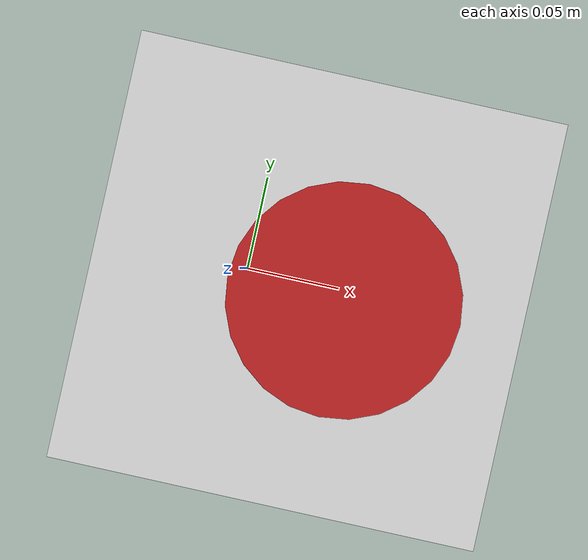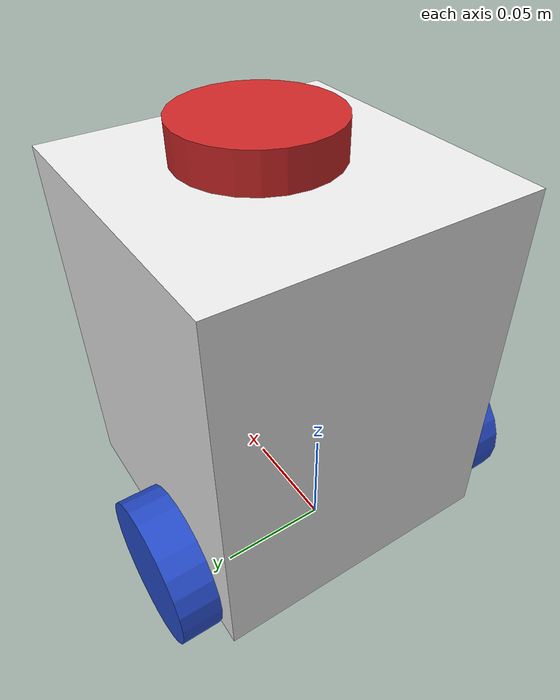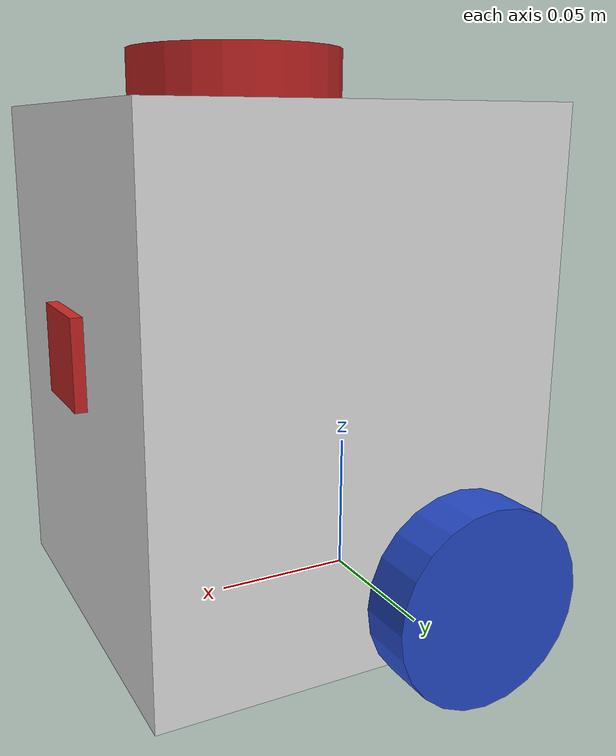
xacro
<?xml version="1.0"?>
<robot xmlns:xacro="http://www.ros.org/wiki/xacro"  name="my_robot_3">

    <xacro:arg name="use_ros2_control" default="true"/>
    <xacro:arg name="sim_mode" default="false"/>

    <xacro:include filename="inertia_macros.xacro"/>
    <xacro:include filename="robot_core.xacro"/>
    <xacro:include filename="colours.xacro"/>
    <xacro:if value="$(arg use_ros2_control)">
        <xacro:include filename="ros2_control.xacro" />
    </xacro:if>
    <xacro:unless value="$(arg use_ros2_control)">
        <xacro:include filename="gazebo_control.xacro" />
    </xacro:unless>

    <xacro:include filename="lidar.xacro" />
    <xacro:include filename="camera.xacro" />
    <xacro:include filename="imu.xacro" />

</robot>

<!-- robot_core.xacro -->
<robot xmlns:xacro="http://www.ros.org/wiki/xacro">

    <!-- Base Link -->
    <link name="base_link">
    </link>

    <!-- Chassis Link -->
    <joint name="chassis_joint" type="fixed">
        <parent link="base_link"/>
        <child link="chassis"/>
        <origin xyz="-0.0365 0 0"/>
    </joint>

    <!-- Chassis 137.6mm² -->
    <link name="chassis">
        <visual>
            <origin xyz="0.069 0 0.0865" rpy="0 0 0"/>
            <geometry>
                <box size="0.138 0.138 0.173"/>
            </geometry>
            <material name="white"/>
        </visual>
        <collision>
            <origin xyz="0.069 0 0.0865" rpy="0 0 0"/>
            <geometry>
                <box size="0.138 0.138 0.173"/>
            </geometry>
            <material name="white"/>
        </collision>
        <xacro:inertial_box mass="1.6" x="0.138" y="0.138" z="0.173">
            <origin xyz="0.069 0 0.0865" rpy="0 0 0"/>
        </xacro:inertial_box>
    </link>
    <gazebo reference="chassis">
        <material>Gazebo/Orange</material>
    </gazebo>

    <!-- LEFT WHEEL 66mm diameter, 18mm wide-->
    <joint name="left_wheel_joint" type="continuous">
        <parent link="base_link"/>
        <child link="left_wheel"/>
        <origin xyz="0 0.08 0.023" rpy="-${pi/2} 0 0"/>
        <axis xyz="0 0 1"/>
    </joint>

    <link name="left_wheel">
        <visual>
            <geometry>
                <cylinder length="0.018" radius="0.033" />
            </geometry>
            <material name="blue"/>
        </visual>
        <collision>
            <geometry>
                <cylinder length="0.018" radius="0.033" />
            </geometry>
            <material name="blue"/>
        </collision>
        <xacro:inertial_cylinder mass="0.1" length="0.018" radius="0.033">
            <origin xyz="0 0 0" rpy="0 0 0"/>
        </xacro:inertial_cylinder>
    </link>
    <gazebo reference="left_wheel">
        <material>Gazebo/Blue</material>
    </gazebo>

    <!-- RIGHT WHEEL -->
    <joint name="right_wheel_joint" type="continuous">
        <parent link="base_link"/>
        <child link="right_wheel"/>
        <origin xyz="0 -0.08 0.023" rpy="${pi/2} 0 0"/>
        <axis xyz="0 0 -1"/>
    </joint>

    <link name="right_wheel">
        <visual>
            <geometry>
                <cylinder length="0.018" radius="0.033" />
            </geometry>
            <material name="blue"/>
        </visual>
        <collision>
            <geometry>
                <cylinder length="0.018" radius="0.033" />
            </geometry>
            <material name="blue"/>
        </collision>
        <xacro:inertial_cylinder mass="0.1" length="0.018" radius="0.033">
            <origin xyz="0 0 0" rpy="0 0 0"/>
        </xacro:inertial_cylinder>
    </link>
    <gazebo reference="right_wheel">
        <material>Gazebo/Blue</material>
    </gazebo>

    <!-- CASTER WHEEL 10mm diameter-->
    <joint name="caster_wheel_joint" type="fixed">
        <parent link="chassis"/>
        <child link="caster_wheel"/>
        <origin xyz="0.12 0 -0.005" rpy="0 0 0"/>
    </joint>

    <link name="caster_wheel">
        <visual>
            <geometry>
                <sphere radius="0.005" />
            </geometry>
            <material name="black"/>
        </visual>
        <collision>
            <geometry>
                <sphere radius="0.005" />
            </geometry>
            <material name="black"/>
        </collision>
    </link>
    <gazebo reference="caster_wheel">
        <material>Gazebo/Black</material>
        <mu1 value="0.001"/>
        <mu2 value="0.001"/>
    </gazebo>

</robot>

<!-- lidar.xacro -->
<robot xmlns:xacro="http://www.ros.org/wiki/xacro" >

    <joint name="laser_joint" type="fixed">
        <parent link="chassis"/>
        <child link="laser_frame"/>
        <origin xyz="0.08 0 0.18" rpy="0 0 0"/>
    </joint>

    <link name="laser_frame">
        <visual>
            <geometry>
                <cylinder radius="0.035" length="0.02"/>
            </geometry>
            <material name="red"/>
        </visual>
        <visual>
            <origin xyz="0 0 -0.05"/>
            <geometry>
                <cylinder radius="0.01" length="0.1"/>
            </geometry>
            <material name="red"/>
        </visual>
        <collision>
            <geometry>
                <cylinder radius="0.035" length="0.02"/>
            </geometry>
        </collision>
        <xacro:inertial_cylinder mass="0.1" length="0.01" radius="0.05">
            <origin xyz="0 0 0" rpy="0 0 0"/>
        </xacro:inertial_cylinder>
    </link>

    <gazebo reference="laser_frame">
        <material>Gazebo/Red</material>

        <sensor name="laser" type="ray">
            <pose> 0 0 0 0 0 0 </pose>
            <visualize>false</visualize>
            <update_rate>10</update_rate>
            <ray>
                <scan>
                    <horizontal>
                        <samples>360</samples>
                        <min_angle>-3.14</min_angle>
                        <max_angle>3.14</max_angle>
                    </horizontal>
                </scan>
                <range>
                    <min>0.3</min>
                    <max>12</max>
                </range>
            </ray>
            <plugin name="laser_controller" filename="libgazebo_ros_ray_sensor.so">
                <ros>
                    <argument>~/out:=scan</argument>
                </ros>
                <output_type>sensor_msgs/LaserScan</output_type>
                <frame_name>laser_frame</frame_name>
            </plugin>
        </sensor>
    </gazebo>

</robot>

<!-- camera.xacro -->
<robot xmlns:xacro="http://www.ros.org/wiki/xacro" >

<joint name="camera_joint" type="fixed">
    <parent link="chassis"/>
    <child link="camera_link"/>
    <origin xyz="0.137 0 0.095" rpy="0 0 0"/>
</joint>

<link name="camera_link">
    <visual>
        <geometry>
            <box size="0.010 0.03 0.03"/>
        </geometry>
        <material name="red"/>
    </visual>
</link>

<joint name="camera_optical_joint" type="fixed">
    <origin xyz="0 0 0" rpy="${-pi/2} 0 ${-pi/2}" />
    <parent link="camera_link" />
    <child link="camera_link_optical" />
</joint>

<link name="camera_link_optical"></link>

<gazebo reference="camera_link">
    <material>Gazebo/Red</material>

    <sensor name="camera" type="camera">
        <pose> 0 0 0 0 0 0 </pose>
        <visualize>true</visualize>
        <update_rate>10</update_rate>
        <camera>
            <horizontal_fov>1.089</horizontal_fov>
            <image>
                <format>R8G8B8</format>
                <width>640</width>
                <height>480</height>
            </image>
            <clip>
                <near>0.05</near>
                <far>8.0</far>
            </clip>
        </camera>
        <plugin name="camera_controller" filename="libgazebo_ros_camera.so">
            <frame_name>camera_link_optical</frame_name>
        </plugin>
    </sensor>
</gazebo>

</robot>

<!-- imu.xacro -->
<robot xmlns:xacro="http://www.ros.org/wiki/xacro" >

<joint name="imu_joint" type="fixed">
    <parent link="base_link"/>
    <child link="imu_link"/>
    <origin xyz="-0.001 0 0.098"/>
</joint>

<link name="imu_link">
    <visual>
        <geometry>
        <box size="0.03 0.02 0.005"/>
        </geometry>
    </visual>

    <collision>
        <geometry>
        <box size="0.03 0.02 0.005"/>
        </geometry>
    </collision>

</link>

<gazebo reference="imu_link">
<sensor name="imu_sensor" type="imu">
<plugin filename="libgazebo_ros_imu_sensor.so" name="imu_plugin">
    <ros>
        <namespace>/demo</namespace>
        <remapping>~/out:=imu</remapping>
    </ros>
    <initial_orientation_as_reference>false</initial_orientation_as_reference>
    </plugin>
    <always_on>true</always_on>
    <update_rate>100</update_rate>
    <visualize>true</visualize>
    <imu>
    <angular_velocity>
        <x>
        <noise type="gaussian">
            <mean>0.0</mean>
            <stddev>2e-4</stddev>
            <bias_mean>0.0000075</bias_mean>
            <bias_stddev>0.0000008</bias_stddev>
        </noise>
        </x>
        <y>
        <noise type="gaussian">
            <mean>0.0</mean>
            <stddev>2e-4</stddev>
            <bias_mean>0.0000075</bias_mean>
            <bias_stddev>0.0000008</bias_stddev>
        </noise>
        </y>
        <z>
        <noise type="gaussian">
            <mean>0.0</mean>
            <stddev>2e-4</stddev>
            <bias_mean>0.0000075</bias_mean>
            <bias_stddev>0.0000008</bias_stddev>
        </noise>
        </z>
    </angular_velocity>
    <linear_acceleration>
        <x>
        <noise type="gaussian">
            <mean>0.0</mean>
            <stddev>1.7e-2</stddev>
            <bias_mean>0.1</bias_mean>
            <bias_stddev>0.001</bias_stddev>
        </noise>
        </x>
        <y>
        <noise type="gaussian">
            <mean>0.0</mean>
            <stddev>1.7e-2</stddev>
            <bias_mean>0.1</bias_mean>
            <bias_stddev>0.001</bias_stddev>
        </noise>
        </y>
        <z>
        <noise type="gaussian">
            <mean>0.0</mean>
            <stddev>1.7e-2</stddev>
            <bias_mean>0.1</bias_mean>
            <bias_stddev>0.001</bias_stddev>
        </noise>
        </z>
    </linear_acceleration>
    </imu>
</sensor>
</gazebo>

</robot>
